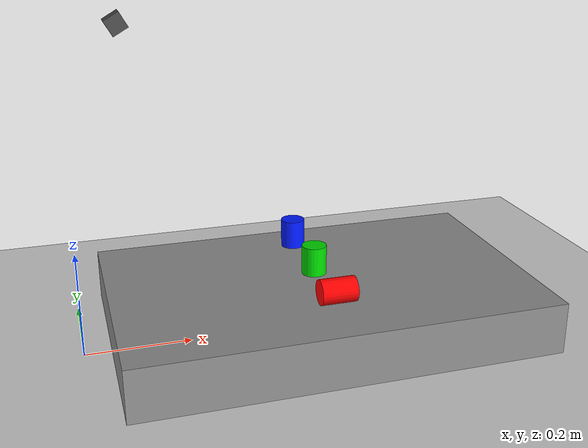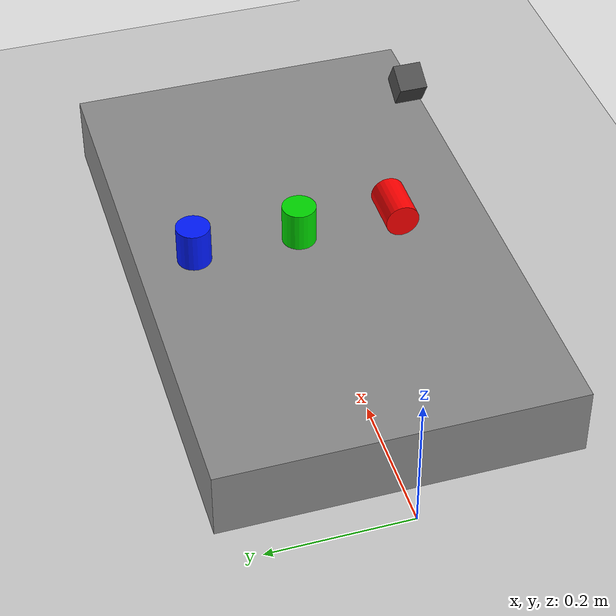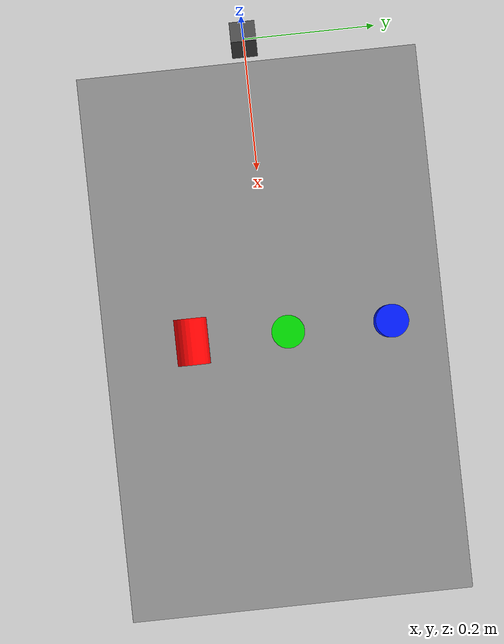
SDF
<?xml version="1.0" ?>
<sdf version="1.6">
  <world name="graspnet_perception_world">

    <!-- ─── Gazebo ROS 基础插件 ───
         gazebo_ros_state：提供 /get_entity_state 等服务，
         验收脚本 verify_pipeline.py 用它查询物体最终位置 -->
    <plugin name="gazebo_ros_state"   filename="libgazebo_ros_state.so"/>

    <gravity>0 0 -10.0</gravity>

    <include>
      <uri>model://sun</uri>
    </include>
    <include>
      <uri>model://ground_plane</uri>
    </include>

    <!-- 10cm high neutral platform. The gray material is outside the
         red/green/blue masks, so preprocessing filters it as background. -->
    <model name="filterable_platform">
      <static>true</static>
      <pose>0.45 0.00 0.050 0 0 0</pose>
      <link name="link">
        <collision name="collision">
          <geometry><box><size>0.80 0.50 0.100</size></box></geometry>
          <surface>
            <friction><ode><mu>5</mu><mu2>5</mu2></ode></friction>
            <contact><ode><kp>100000</kp><kd>20</kd></ode></contact>
          </surface>
        </collision>
        <visual name="visual">
          <geometry><box><size>0.80 0.50 0.100</size></box></geometry>
          <material><ambient>0.55 0.55 0.55 1</ambient><diffuse>0.55 0.55 0.55 1</diffuse></material>
        </visual>
      </link>
    </model>

    <!-- ============================================================
         物体 — 与原始 piper_pick.world 一致
         ============================================================ -->

    <!-- 红色圆柱：横躺（绕Y90°），y 移至 -0.12（8/2 调整，移近中心） -->
    <model name="red_box">
      <static>false</static>
      <pose>0.45 -0.12 0.124000 0 1.570796 0</pose>
      <link name="link">
        <gravity>true</gravity>
        <velocity_decay><linear>1.00</linear><angular>1.00</angular></velocity_decay>
        <inertial>
          <mass>0.060</mass>
          <inertia>
            <ixx>1.73e-05</ixx><ixy>0</ixy><ixz>0</ixz>
            <iyy>3.14e-05</iyy><iyz>0</iyz>
            <izz>3.14e-05</izz>
          </inertia>
        </inertial>
        <collision name="collision">
          <geometry><cylinder><radius>0.024</radius><length>0.0675</length></cylinder></geometry>
          <surface>
            <friction><ode><mu>5</mu><mu2>5</mu2></ode></friction>
            <contact><ode><kp>80000</kp><kd>20</kd><min_depth>0.001</min_depth><max_vel>0.1</max_vel></ode></contact>
          </surface>
        </collision>
        <visual name="visual">
          <geometry><cylinder><radius>0.024</radius><length>0.0675</length></cylinder></geometry>
          <material><ambient>1 0 0 1</ambient><diffuse>1 0 0 1</diffuse></material>
        </visual>
      </link>
    </model>

    <!-- 绿色圆柱：竖立放置（8/2 恢复竖立） -->
    <model name="green_cylinder">
      <static>false</static>
      <pose>0.45 0.02 0.124000 0 0 0</pose>
      <link name="link">
        <gravity>true</gravity>
        <velocity_decay><linear>1.00</linear><angular>1.00</angular></velocity_decay>
        <inertial>
          <mass>0.060</mass>
          <inertia>
            <ixx>1.73e-05</ixx><ixy>0</ixy><ixz>0</ixz>
            <iyy>3.14e-05</iyy><iyz>0</iyz>
            <izz>3.14e-05</izz>
          </inertia>
        </inertial>
        <collision name="collision">
          <geometry><cylinder><radius>0.024</radius><length>0.0675</length></cylinder></geometry>
          <surface>
            <friction><ode><mu>5</mu><mu2>5</mu2></ode></friction>
            <contact><ode><kp>80000</kp><kd>20</kd><min_depth>0.001</min_depth><max_vel>0.1</max_vel></ode></contact>
          </surface>
        </collision>
        <visual name="visual">
          <geometry><cylinder><radius>0.024</radius><length>0.0675</length></cylinder></geometry>
          <material><ambient>0 0.85 0 1</ambient><diffuse>0 0.85 0 1</diffuse></material>
        </visual>
      </link>
    </model>

    <!-- 蓝色圆柱：竖立放置，位置恢复为原始物体布局 -->
    <model name="blue_sphere">
      <static>false</static>
      <pose>0.45 0.17 0.124000 0 0 0</pose>
      <link name="link">
        <gravity>true</gravity>
        <velocity_decay><linear>1.00</linear><angular>1.00</angular></velocity_decay>
        <inertial>
          <mass>0.060</mass>
          <inertia>
            <ixx>1.73e-05</ixx><ixy>0</ixy><ixz>0</ixz>
            <iyy>3.14e-05</iyy><iyz>0</iyz>
            <izz>3.14e-05</izz>
          </inertia>
        </inertial>
        <collision name="collision">
          <geometry><cylinder><radius>0.024</radius><length>0.0675</length></cylinder></geometry>
          <surface>
            <friction><ode><mu>5</mu><mu2>5</mu2></ode></friction>
            <contact><ode><kp>80000</kp><kd>20</kd><min_depth>0.001</min_depth><max_vel>0.1</max_vel></ode></contact>
          </surface>
        </collision>
        <visual name="visual">
          <geometry><cylinder><radius>0.024</radius><length>0.0675</length></cylinder></geometry>
          <material><ambient>0 0.1 1 1</ambient><diffuse>0 0.1 1 1</diffuse></material>
        </visual>
      </link>
    </model>

    <model name="overhead_camera">
      <static>true</static>
      <!--
        位置：(0.1, 0, 0.6)，位于物体前方
        姿态：yaw=0 朝 +X，pitch=60° 俯视前方物体
      -->
      <pose>0.1 0 0.6 0 1.047198 0</pose>
      <link name="link">
        <!-- 相机本体可视化（小立方体标记） -->
        <visual name="visual">
          <geometry><box><size>0.03 0.03 0.03</size></box></geometry>
          <material><ambient>0.3 0.3 0.3 1</ambient></material>
        </visual>
        <collision name="collision">
          <geometry><box><size>0.03 0.03 0.03</size></box></geometry>
        </collision>

        <sensor name="camera" type="depth">
          <!-- 相机内参：800x600, HFOV≈57°，缩小视角以放大工作台上的物体 -->
          <camera>
            <horizontal_fov>1.0</horizontal_fov>
            <image>
              <width>800</width>
              <height>600</height>
              <format>R8G8B8</format>
            </image>
            <depth_camera>
              <output>depths</output>
            </depth_camera>
            <clip>
              <near>0.1</near>
              <far>5.0</far>
            </clip>
          </camera>

          <!-- 始终开启以持续发布话题 -->
          <always_on>1</always_on>
          <update_rate>15.0</update_rate>
          <visualize>false</visualize>

          <plugin name="overhead_camera_plugin" filename="libgazebo_ros_camera.so">
            <alwaysOn>true</alwaysOn>
            <updateRate>15.0</updateRate>
            <cameraName>camera</cameraName>
            <frameName>camera_link</frameName>
            <hackBaseline>0.07</hackBaseline>
          </plugin>
        </sensor>
      </link>
    </model>

  </world>
</sdf>
